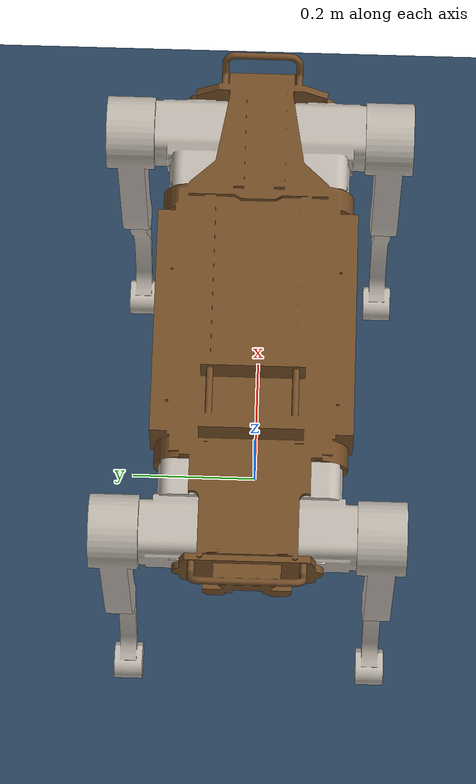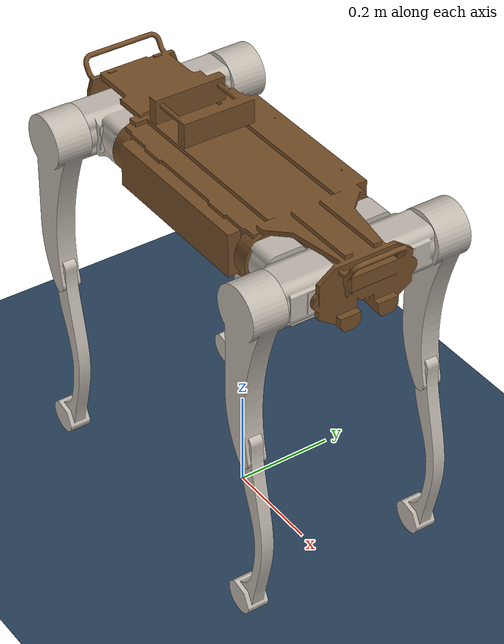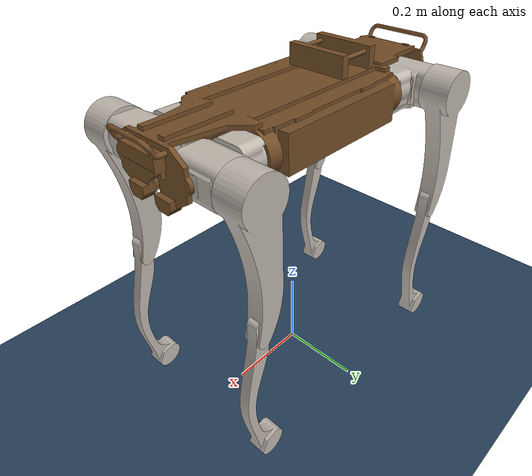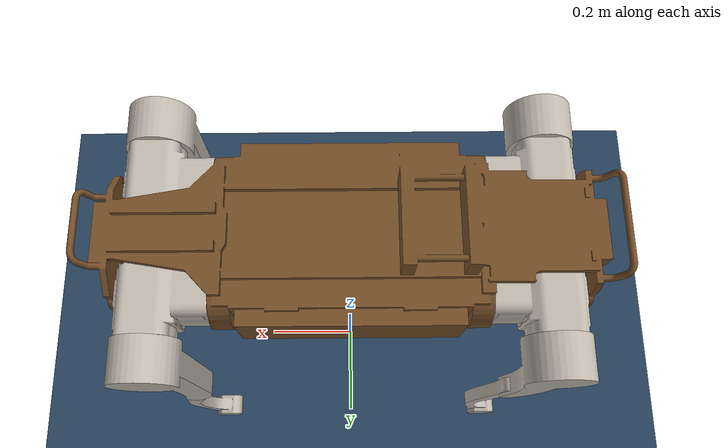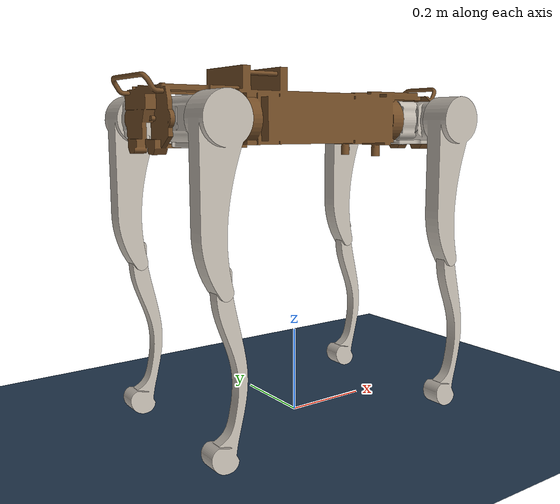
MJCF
<mujoco model="rbq scene">
  <include file="rbq.xml"/>

  <statistic center="0 0 0.45" extent="1.4"/>

  <visual>
    <headlight diffuse="0.6 0.6 0.6" ambient="0.3 0.3 0.3" specular="0 0 0"/>
    <rgba haze="0.15 0.25 0.35 1"/>
    <global azimuth="120" elevation="-20"/>
  </visual>

  <asset>
    <texture type="skybox" builtin="gradient" rgb1="0.3 0.5 0.7" rgb2="0 0 0" width="512" height="3072"/>
    <texture type="2d" name="groundplane" builtin="checker" mark="edge" rgb1="0.2 0.3 0.4" rgb2="0.1 0.2 0.3"
      markrgb="0.8 0.8 0.8" width="300" height="300"/>
    <material name="groundplane" texture="groundplane" texuniform="true" texrepeat="5 5" reflectance="0.2"/>
  </asset>

  <worldbody>
    <light pos="0 0 1.5" dir="0 0 -1" directional="true"/>
    <geom name="floor" size="0 0 0.05" type="plane" material="groundplane"/>
  </worldbody>
</mujoco>

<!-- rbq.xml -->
<mujoco model="rbq">
    <compiler
        angle="radian"
        coordinate="local"
        autolimits="true"
    />

    <option
        timestep="0.001"
        gravity="0 0 -9.81"
        integrator="RK4"
        cone="elliptic"
        impratio="100"
        tolerance="1e-10" >
        <flag warmstart="enable" energy="enable" contact="enable" frictionloss="enable"/>
    </option>

    <default>
        <default class="rbq">
            <geom friction="0.0" margin="0.001" condim="1"/>

            <default class="abduction">
                <default class="left_abduction">
                    <joint axis="1 0 0" range="-0.5411 0.7330" damping="0." armature="0.014058265" frictionloss="0.5"/>
                    <motor ctrlrange="-100 100" ctrllimited="true"/>
                </default>
                <default class="right_abduction">
                    <joint axis="1 0 0" range="-0.7330 0.5411" damping="0." armature="0.014058265" frictionloss="0.5"/>
                    <motor ctrlrange="-100 100" ctrllimited="true"/>
                </default>
            </default>
            <default class="hip">
                <joint axis="0 1 0" range="-6.2832 6.2832" damping="0." armature="0.014058265" frictionloss="0.5"/>
                <motor ctrlrange="-120. 120" ctrllimited="true"/>
            </default>
            <default class="knee">
                <joint axis="0 1 0" range="-2.8274 -0.4189" damping="0." armature="0.0214816" frictionloss="0.5"/>
                <motor ctrlrange="-150. 150" ctrllimited="true"/>
            </default>
            <default class="visual">
                <geom type="mesh" contype="0" conaffinity="0" group="2"/>
            </default>
            <default class="collision">
                <geom contype="1" conaffinity="1" group="3"/>
                <default class="foot">
                    <geom type="sphere" size="0.03" priority="1" condim="6"
                        friction="0.8 0.8 0.8"/>
                </default>
            </default>
        </default>
    </default>

    <asset>
        <material name="metal" rgba=".9 .95 .95 1"/>
        <material name="black" rgba="0 0 0 1"/>
        <material name="white" rgba="1 1 1 1"/>
        <material name="gray" rgba="0.671705 0.692426 0.774270 1"/>
        <material name="graygray" rgba="0.4 0.4 0.4 1"/>
        <material name="tan" rgba="0.823 0.706 0.549 1"/>
        <material name="palegoldenrod" rgba="0.9334 0.91 0.667 1.0"/>
        <material name="charcoal" rgba="0.3 0.3 0.3 1.0"/>
        <material name="darker_gray" rgba="0.2 0.2 0.2 1.0"/>

        <texture name="trunk_texture" type="2d" file="assets/trunk_skin.png"/>
        <texture name="hip_texture" type="2d" file="assets/hip_skin.png"/>
        <texture name="thigh_left_texture" type="2d" file="assets/thigh_left_skin.png"/>
        <texture name="thigh_right_texture" type="2d" file="assets/thigh_right_skin.png"/>
        <texture name="calf_texture" type="2d" file="assets/calf_skin.png"/>

        <material name="trunk_material" texture="trunk_texture"/>
        <material name="hip_material" texture="hip_texture"/>
        <material name="thigh_left_material" texture="thigh_left_texture"/>
        <material name="thigh_right_material" texture="thigh_right_texture"/>
        <material name="calf_material" texture="calf_texture"/>

        <mesh name="trunk" file="assets/trunk.obj" scale="1 1 1"/>
        <mesh name="trunk_collision" file="assets/trunk_collision.obj" scale="1 1 1"/>
        <mesh name="hip2" file="assets/hip2.obj" scale="1 1 1"/>
        <mesh name="hip3" file="assets/hip3.obj" scale="1 1 1"/>
        <mesh name="thigh" file="assets/thigh.obj" scale="1 1 1"/>
        <mesh name="calf" file="assets/calf.obj" scale="1 1 1"/>
    </asset>

    <worldbody>
        <body name="base_link" pos="0 0 0.7" quat="1 0 0 0" childclass="rbq">
            <inertial
                pos="-0.013265 0.0 0.011765"
                mass="16.758"
                fullinertia="0.163831629266 0.590891341306 0.678714788268 -0.000271071491 0.040352639311 0.000216428332"/>
            <freejoint/>
            <geom type="mesh" mesh="trunk" material="trunk_material" class="visual"/>
            <geom type="mesh" mesh="trunk_collision" material="graygray" class="collision"/>

            <camera name="track_cam" mode="track" target="base_link" pos="0 -2 1" euler="20 0 0"/>

            <site name="imu" pos="0.00665 0 -0.0404"/>

            <body name="BT0_body" pos="0.36462 0 -0.02663" quat="0 -0.1736482 0 0.9848078">
                <camera name="BT0"
                    mode="fixed"
                    pos="0 0 0"
                    quat="1 0 0 0"
                    focal="1.93e-3 1.93e-3"
                    resolution="640 360"
                    sensorsize="3896e-6 2140e-6"/>
            </body>
            <body name="BT1_body" pos="0.26053 0 -0.04759" quat="0 0.1218693 0 0.9925462">
                <camera name="BT1"
                    mode="fixed"
                    pos="0 0 0"
                    quat="1 0 0 0"
                    focal="1.93e-3 1.93e-3"
                    resolution="640 360"
                    sensorsize="3896e-6 2140e-6"/>
            </body>
            <body name="BT2_body" pos="-0.19515 0 -0.04832" quat="0 0 0 1">
                <camera name="BT2"
                    mode="fixed"
                    pos="0 0 0"
                    quat="1 0 0 0"
                    focal="1.93e-3 1.93e-3"
                    resolution="640 360"
                    sensorsize="3896e-6 2140e-6"/>
            </body>
            <body name="BT3_body" pos="-0.352993 0 -0.020514" quat="0.9848078 0 0.1736482 0">
                <camera name="BT3"
                    mode="fixed"
                    pos="0 0 0"
                    quat="1 0 0 0"
                    focal="1.93e-3 1.93e-3"
                    resolution="640 360"
                    sensorsize="3896e-6 2140e-6"/>
            </body>
            <body name="FT0_body" pos="0.388031 -0.037500 0.037764" quat="0.5 0.5 -0.5 -0.5">
                <camera name="FT0"
                    mode="fixed"
                    pos="0 0 0"
                    quat="1 0 0 0"
                    focal="1.93e-3 1.93e-3"
                    resolution="640 360"
                    sensorsize="384e-5 240e-5"/>
            </body>
            <body name="RR0_body" pos="-0.388031 0.037500 0.037764" quat="-0.5 -0.5 -0.5 -0.5">
                <camera name="RR0"
                    mode="fixed"
                    pos="0 0 0"
                    quat="1 0 0 0"
                    focal="1.93e-3 1.93e-3"
                    resolution="640 360"
                    sensorsize="384e-5 240e-5"/>
            </body>

            <!-- RR 다리 -->
            <body name="RR_hip" pos="-0.31218 -0.09 0." euler="0 0 0">
                <inertial pos="0.027522 -0.01681 -0.00187" mass="3.669344"
                    fullinertia="0.006957590282 0.00993982268 0.012145140245 -0.0017011378 -0.000029676183 0.000087952172"/>
                <joint name="joint0_HRR" class="right_abduction"/>
                <geom type="mesh" mesh="hip3" material="hip_material" euler="0 0 3.141592" class="visual"/>

                <body name="RR_thigh" pos="0 -0.10285 0" euler="0 0 0">
                    <inertial pos="-0.004765 -0.00441 -0.06311" mass="1.80014"
                        fullinertia="0.018990787558 0.019770882672 0.001828257915 0.000045769435 -0.001024809563 0.000510504233"/>
                    <joint name="joint1_HRP" class="hip"/>
                    <geom type="mesh" mesh="thigh" material="thigh_right_material" class="visual"/>
                    <geom type="cylinder" size="0.06 0.035" euler="1.57 0 0" class="collision"/>
                    <geom type="box" size="0.025 0.02 0.125" pos="-0.035 0 -0.125" class="collision"/>

                    <body name="RR_calf" pos="0 0 -0.33" euler="0 0 0">
                        <inertial pos="0.008988 0.000072 -0.14911" mass="0.4520"
                            fullinertia="0.00214256 0.00216568 0.0000616440919 0.000000075939 0.0000230368745 0.000009344688"/>
                        <joint name="joint2_HRK" class="knee"/>
                        <geom type="mesh" mesh="calf" material="calf_material" class="visual"/>
                        <geom type="box" size="0.01 0.015 0.105" pos="0.01 0 -0.065" euler="0 -0.226893 0" class="collision"/>
                        <geom type="box" size="0.01 0.015 0.04" pos="0.03 0 -0.23" euler="0 0.11 0" class="collision"/>

                        <body name="RR_foot" pos="0 0 -0.33">
                            <inertial pos="0 0 0" mass="0.06"
                                fullinertia="9.6e-06 9.6e-06 9.6e-06 0 0 0"/>
                            <geom name="RR" type="sphere" pos="-0.01 0 -0.005" size="0.03" class="foot"/>
                        </body>
                    </body>
                </body>
            </body>

            <!-- RL 다리 -->
            <body name="RL_hip" pos="-0.31218 0.09 0">
                <inertial pos="0.027522 0.01681 -0.00187" mass="3.669344"
                    fullinertia="0.006957590282 0.00993982268 0.012145140245 0.0017011378 -0.000029676183 -0.000087952172"/>
                <joint name="joint3_HLR" class="left_abduction"/>
                <geom type="mesh" mesh="hip2" material="hip_material" euler="0 0 -3.141592" class="visual"/>

                <body name="RL_thigh" pos="0 0.10285 0">
                    <inertial pos="-0.004765 0.00441 -0.06311" mass="1.80014"
                        fullinertia="0.018990787558 0.019770882672 0.001828257915 -0.000045769435 -0.001024809563 -0.000510504233"/>
                    <joint name="joint4_HLP" class="hip"/>
                    <geom type="mesh" mesh="thigh" material="thigh_left_material" class="visual"/>
                    <geom type="cylinder" size="0.06 0.035" euler="1.57 0 0" class="collision"/>
                    <geom type="box" size="0.025 0.02 0.125" pos="-0.035 0 -0.125" class="collision"/>

                    <body name="RL_calf" pos="0 0 -0.33">
                        <inertial pos="0.008988 -0.000072 -0.14911" mass="0.4520"
                            fullinertia="0.00214256 0.00216568 0.0000616440919 -0.000000075939 0.0000230368745 -0.000009344688"/>
                        <joint name="joint5_HLK" class="knee"/>
                        <geom type="mesh" mesh="calf" material="calf_material" class="visual"/>
                        <geom type="box" size="0.01 0.015 0.105" pos="0.01 0 -0.065" euler="0 -0.226893 0" class="collision"/>
                        <geom type="box" size="0.01 0.015 0.04" pos="0.03 0 -0.23" euler="0 0.11 0" class="collision"/>

                        <body name="RL_foot" pos="0 0 -0.33">
                            <inertial pos="0 0 0" mass="0.06"
                                fullinertia="9.6e-06 9.6e-06 9.6e-06 0 0 0"/>
                            <geom name="RL"  pos="-0.01 0 -0.005" type="sphere" size="0.03" class="foot"/>
                        </body>
                    </body>
                </body>
            </body>

            <!-- FR 다리 -->
            <body name="FR_hip" pos="0.31218 -0.09 0" euler="0 0 0">
                <inertial pos="-0.027522 -0.01681 -0.00187" mass="3.669344"
                    fullinertia="0.006957590282 0.00993982268 0.012145140245 0.0017011378 0.000029676183 0.000087952172"/>
                <joint name="joint6_FRR" class="right_abduction"/>
                <geom type="mesh" mesh="hip2" material="hip_material" euler="0 0 0" class="visual"/>

                <body name="FR_thigh" pos="0 -0.10285 0" euler="0 0 0">
                    <inertial pos="-0.004765 -0.00441 -0.06311" mass="1.80014"
                        fullinertia="0.018990787558 0.019770882672 0.001828257915 0.000045769435 -0.001024809563 0.000510504233"/>
                    <joint name="joint7_FRP" class="hip"/>
                    <geom type="mesh" mesh="thigh" material="thigh_right_material" class="visual"/>
                    <geom type="cylinder" size="0.06 0.035" euler="1.57 0 0" class="collision"/>
                    <geom type="box" size="0.025 0.02 0.125" pos="-0.035 0 -0.125" class="collision"/>

                    <body name="FR_calf" pos="0 0 -0.33" euler="0 0 0">
                        <inertial pos="0.008988 0.000072 -0.14911" mass="0.4520"
                            fullinertia="0.00214256 0.00216568 0.0000616440919 0.000000075939 0.0000230368745 0.000009344688"/>
                        <joint name="joint8_FRK" class="knee"/>
                        <geom type="mesh" mesh="calf" material="calf_material" class="visual"/>
                        <geom type="box" size="0.01 0.015 0.105" pos="0.01 0 -0.065" euler="0 -0.226893 0" class="collision"/>
                        <geom type="box" size="0.01 0.015 0.04" pos="0.03 0 -0.23" euler="0 0.11 0" class="collision"/>

                        <body name="FR_foot" pos="0 0 -0.33">
                            <inertial pos="0 0 0" mass="0.06"
                                fullinertia="9.6e-06 9.6e-06 9.6e-06 0 0 0"/>
                            <geom name="FR"  pos="-0.01 0 -0.005" type="sphere" size="0.03" class="foot"/>
                        </body>
                    </body>
                </body>
            </body>

            <!-- FL 다리 -->
            <body name="FL_hip" pos="0.31218 0.09 0">
                <inertial pos="-0.027522 0.01681 -0.00187" mass="3.669344"
                    fullinertia="0.006957590282 0.00993982268 0.012145140245 -0.0017011378 0.000029676183 -0.000087952172"/>
                <joint name="joint9_FLR" class="left_abduction"/>
                <geom type="mesh" mesh="hip3" material="hip_material" euler="0 0 0" class="visual"/>

                <body name="FL_thigh" pos="0 0.10285 0">
                    <inertial pos="-0.004765 0.00441 -0.06311" mass="1.80014"
                        fullinertia="0.018990787558 0.019770882672 0.001828257915 -0.000045769435 -0.001024809563 -0.000510504233"/>
                    <joint name="joint10_FLP" class="hip"/>
                    <geom type="mesh" mesh="thigh" material="thigh_left_material" class="visual"/>
                    <geom type="cylinder" size="0.06 0.035" euler="1.57 0 0" class="collision"/>
                    <geom type="box" size="0.025 0.02 0.125" pos="-0.035 0 -0.125" class="collision"/>

                    <body name="FL_calf" pos="0 0 -0.33">
                        <inertial pos="0.008988 -0.000072 -0.14911" mass="0.4520"
                            fullinertia="0.00214256 0.00216568 0.0000616440919 -0.000000075939 0.0000230368745 -0.000009344688"/>
                        <joint name="joint11_FLK" class="knee"/>
                        <geom type="mesh" mesh="calf" material="calf_material" class="visual"/>
                        <geom type="box" size="0.01 0.015 0.105" pos="0.01 0 -0.065" euler="0 -0.226893 0" class="collision"/>
                        <geom type="box" size="0.01 0.015 0.04" pos="0.03 0 -0.23" euler="0 0.11 0" class="collision"/>

                        <body name="FL_foot" pos="0 0 -0.33">
                            <inertial pos="0 0 0" mass="0.06"
                                fullinertia="9.6e-06 9.6e-06 9.6e-06 0 0 0"/>
                            <geom name="FL"  pos="-0.01 0 -0.005" type="sphere" size="0.03" class="foot"/>
                        </body>
                    </body>
                </body>
            </body>

        </body>
    </worldbody>

    <actuator>
        <!-- RR 다리 모터 -->
        <motor class="right_abduction" name="motor0_HRR" joint="joint0_HRR"/>
        <motor class="hip" name="motor1_HRP" joint="joint1_HRP"/>
        <motor class="knee" name="motor2_HRK" joint="joint2_HRK"/>

        <!-- RL 다리 모터 -->
        <motor class="left_abduction" name="motor3_HLR" joint="joint3_HLR"/>
        <motor class="hip" name="motor4_HLP" joint="joint4_HLP"/>
        <motor class="knee" name="motor5_HLK" joint="joint5_HLK"/>

        <!-- FR 다리 모터 -->
        <motor class="right_abduction" name="motor6_FRR" joint="joint6_FRR"/>
        <motor class="hip" name="motor7_FRP" joint="joint7_FRP"/>
        <motor class="knee" name="motor8_FRK" joint="joint8_FRK"/>

        <!-- FL 다리 모터 -->
        <motor class="left_abduction" name="motor9_FLR" joint="joint9_FLR"/>
        <motor class="hip" name="motor10_FLP" joint="joint10_FLP"/>
        <motor class="knee" name="motor11_FLK" joint="joint11_FLK"/>
        <!-- position, velocity, 를 따로 정의 내릴 수 있음 -->

    </actuator>

    <sensor>
        <jointpos name="joint0_HRR_pos" joint="joint0_HRR"/>
        <jointpos name="joint1_HRP_pos" joint="joint1_HRP"/>
        <jointpos name="joint2_HRK_pos" joint="joint2_HRK"/>
        <jointpos name="joint3_HLR_pos" joint="joint3_HLR"/>
        <jointpos name="joint4_HLP_pos" joint="joint4_HLP"/>
        <jointpos name="joint5_HLK_pos" joint="joint5_HLK"/>
        <jointpos name="joint6_FRR_pos" joint="joint6_FRR"/>
        <jointpos name="joint7_FRP_pos" joint="joint7_FRP"/>
        <jointpos name="joint8_FRK_pos" joint="joint8_FRK"/>
        <jointpos name="joint9_FLR_pos" joint="joint9_FLR"/>
        <jointpos name="joint10_FLP_pos" joint="joint10_FLP"/>
        <jointpos name="joint11_FLK_pos" joint="joint11_FLK"/>

        <jointvel name="joint0_HRR_vel" joint="joint0_HRR"/>
        <jointvel name="joint1_HRP_vel" joint="joint1_HRP"/>
        <jointvel name="joint2_HRK_vel" joint="joint2_HRK"/>
        <jointvel name="joint3_HLR_vel" joint="joint3_HLR"/>
        <jointvel name="joint4_HLP_vel" joint="joint4_HLP"/>
        <jointvel name="joint5_HLK_vel" joint="joint5_HLK"/>
        <jointvel name="joint6_FRR_vel" joint="joint6_FRR"/>
        <jointvel name="joint7_FRP_vel" joint="joint7_FRP"/>
        <jointvel name="joint8_FRK_vel" joint="joint8_FRK"/>
        <jointvel name="joint9_FLR_vel" joint="joint9_FLR"/>
        <jointvel name="joint10_FLP_vel" joint="joint10_FLP"/>
        <jointvel name="joint11_FLK_vel" joint="joint11_FLK"/>

        <jointactuatorfrc name="joint0_HRR_torque" joint="joint0_HRR" noise="0.0"/>
        <jointactuatorfrc name="joint1_HRP_torque" joint="joint1_HRP" noise="0.0"/>
        <jointactuatorfrc name="joint2_HRK_torque" joint="joint2_HRK" noise="0.0"/>
        <jointactuatorfrc name="joint3_HLR_torque" joint="joint3_HLR" noise="0.0"/>
        <jointactuatorfrc name="joint4_HLP_torque" joint="joint4_HLP" noise="0.0"/>
        <jointactuatorfrc name="joint5_HLK_torque" joint="joint5_HLK" noise="0.0"/>
        <jointactuatorfrc name="joint6_FRR_torque" joint="joint6_FRR" noise="0.0"/>
        <jointactuatorfrc name="joint7_FRP_torque" joint="joint7_FRP" noise="0.0"/>
        <jointactuatorfrc name="joint8_FRK_torque" joint="joint8_FRK" noise="0.0"/>
        <jointactuatorfrc name="joint9_FLR_torque" joint="joint9_FLR" noise="0.0"/>
        <jointactuatorfrc name="joint10_FLP_torque" joint="joint10_FLP" noise="0.0"/>
        <jointactuatorfrc name="joint11_FLK_torque" joint="joint11_FLK" noise="0.0"/>

        <framequat name="imu_quat" objtype="site" objname="imu"/>
        <gyro name="imu_gyro" site="imu"/>
        <accelerometer name="imu_acc" site="imu"/>

        <framepos name="frame_pos" objtype="site" objname="imu"/>
        <framelinvel name="frame_vel" objtype="site" objname="imu"/>
    </sensor>

</mujoco>
